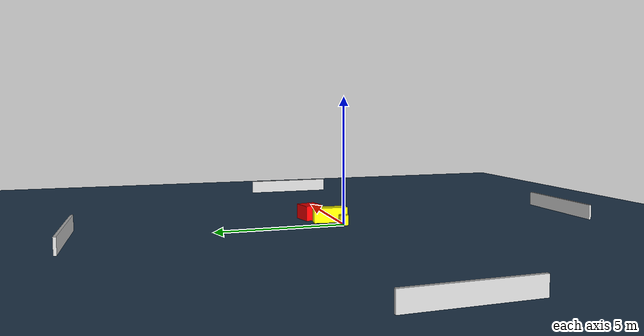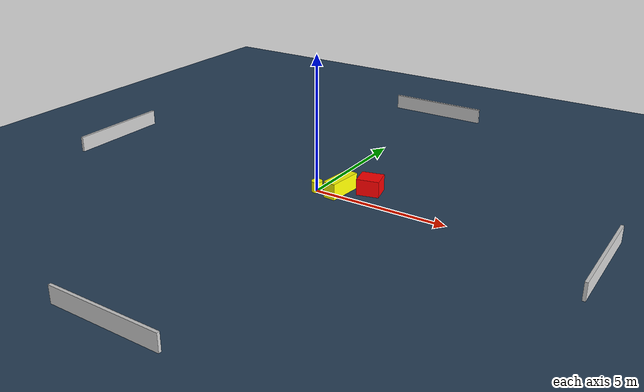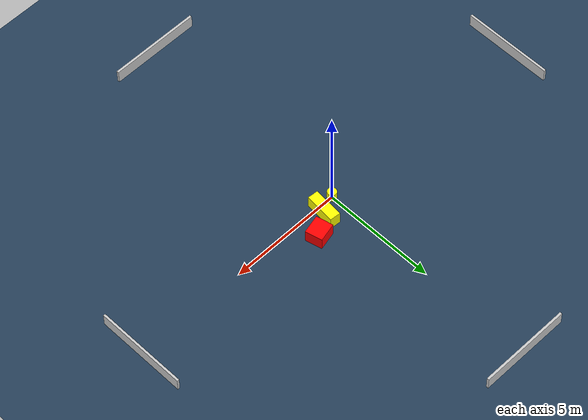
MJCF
<?xml version="1.0" ?>
<mujoco model="generated_environment">
  <option timestep="0.01" integrator="RK4" cone="elliptic"/>
  <default>
    <geom density="1"/>
  </default>
  <asset>
    <texture builtin="gradient" height="3072" name="skybox" rgb1="0.3 0.5 0.7" rgb2="0 0 0" type="skybox" width="512"/>
    <texture builtin="checker" height="300" name="groundplane" rgb1="0.2 0.3 0.4" rgb2="0.1 0.2 0.3" type="2d" width="300"/>
    <material name="groundplane" reflectance="0.2" texrepeat="5 5" texture="groundplane"/>
  </asset>
  <worldbody>
    <light dir="0 0 -1" directional="true" pos="0 0 1.5"/>
    <geom condim="3" friction="0.5 0.005 0.001" material="groundplane" name="floor" pos="0 0 0" size="0 0 0.05" type="plane"/>
    <body name="walls">
      <geom name="wall_1" condim="4" pos="-10.0 0.0 0.3" rgba="0.800000011920929 0.800000011920929 0.800000011920929 1.0" size="0.05 2.0 0.3" type="box"/>
      <geom name="wall_2" condim="4" pos="10.0 0.0 0.3" rgba="0.800000011920929 0.800000011920929 0.800000011920929 1.0" size="0.05 2.0 0.3" type="box"/>
      <geom name="wall_3" condim="4" pos="0.0 -10.0 0.3" rgba="0.800000011920929 0.800000011920929 0.800000011920929 1.0" size="2.0 0.05 0.3" type="box"/>
      <geom name="wall_4" condim="4" pos="0.0 10.0 0.3" rgba="0.800000011920929 0.800000011920929 0.800000011920929 1.0" size="2.0 0.05 0.3" type="box"/>
    </body>
    <body name="robot">
      <joint name="joint_x" type="slide" pos="0 0 0" axis="1 0 0"/>
      <joint name="joint_y" type="slide" pos="0 0 0" axis="0 1 0"/>
      <geom name="robot" type="cylinder" pos="0.0 0.0 0.2" size="0.2 0.2 0.0" mass="5.0" friction="1.0 0.005 0.0001" condim="4" rgba="1.0 1.0 0.0 1.0"/>
    </body>
    <body name="obstacle_1_movable">
      <geom name="obstacle_1_movable" condim="4" pos="0.770944339692065 0.3354746909912795 0.3" euler="0 0 264.5290675049218" friction="0.0 0.005 0.001" rgba="1.0 1.0 0.0 1.0" size="0.6718436890071608 0.23021159051983064 0.3" type="box" mass="0.1"/>
      <joint type="free"/>
    </body>
    <body name="obstacle_2_static">
      <geom name="obstacle_2_static" condim="4" pos="1.6474367504801077 0.9414500816566841 0.3" euler="0 0 283.46740560345194" friction="0.0 0.005 0.001" rgba="1.0 0.0 0.0 1.0" size="0.3747839351472694 0.409150575249437 0.3" type="box"/>
    </body>
  </worldbody>
  <actuator>
    <motor name="actuator_x" joint="joint_x" gear="1" ctrlrange="-1 1"/>
    <motor name="actuator_y" joint="joint_y" gear="1" ctrlrange="-1 1"/>
  </actuator>
</mujoco>
